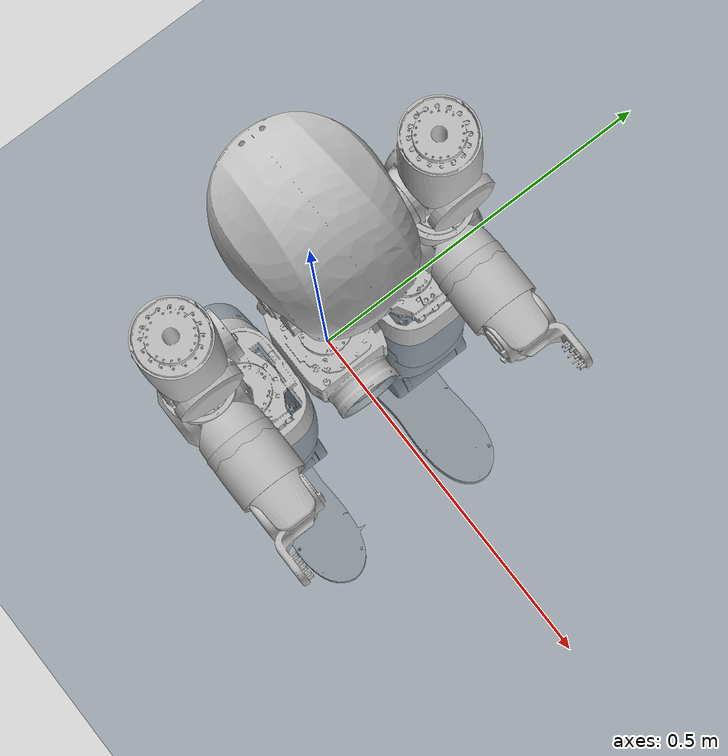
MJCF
<mujoco model="vr_m3_1">
  <include file="vr_m3_1_rl.xml"/>
  <include file="vr_m3_1_sensors.xml"/>
  <!-- Actuators are added from vr_m3_1_constants.py. -->
  <include file="scene.xml"/>
  <keyframe>
    <key name="home" qpos="0 0 0.854 1 0 0 0 0 0 0 0 0 0 0 0 0 0 0 0 0 0 0 0 0 0 0 0 0 0 0 0 0 0 0 0 0"/>
  </keyframe>
</mujoco>

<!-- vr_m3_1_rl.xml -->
<mujoco model="vr_m3_1">
  <compiler angle="radian" meshdir="assets"/>

  <default>
    <default class="vr_m3_1_visual">
      <geom contype="0" conaffinity="0" group="2" density="0"/>
    </default>
    <default class="vr_m3_1_collision">
      <geom group="3" rgba="0.9 0.9 0 1"/>
    </default>
  </default>

  <asset>
    <mesh name="pelvis" content_type="model/stl" file="pelvis.stl"/>
    <mesh name="right_hip_pitch_link" content_type="model/stl" file="right_hip_pitch_link.stl"/>
    <mesh name="right_hip_roll_link" content_type="model/stl" file="right_hip_roll_link.stl"/>
    <mesh name="right_hip_yaw_link" content_type="model/stl" file="right_hip_yaw_link.stl"/>
    <mesh name="right_knee_pitch_link" content_type="model/stl" file="right_knee_pitch_link.stl"/>
    <mesh name="right_ankle_pitch_link" content_type="model/stl" file="right_ankle_pitch_link.stl"/>
    <mesh name="right_ankle_roll_link" content_type="model/stl" file="right_ankle_roll_link.stl"/>
    <mesh name="left_hip_pitch_link" content_type="model/stl" file="left_hip_pitch_link.stl"/>
    <mesh name="left_hip_roll_link" content_type="model/stl" file="left_hip_roll_link.stl"/>
    <mesh name="left_hip_yaw_link" content_type="model/stl" file="left_hip_yaw_link.stl"/>
    <mesh name="left_knee_pitch_link" content_type="model/stl" file="left_knee_pitch_link.stl"/>
    <mesh name="left_ankle_pitch_link" content_type="model/stl" file="left_ankle_pitch_link.stl"/>
    <mesh name="left_ankle_roll_link" content_type="model/stl" file="left_ankle_roll_link.stl"/>
    <mesh name="waist_yaw_link" content_type="model/stl" file="waist_yaw_link.stl"/>
    <mesh name="right_shoulder_pitch_link" content_type="model/stl" file="right_shoulder_pitch_link.stl"/>
    <mesh name="right_shoulder_roll_link" content_type="model/stl" file="right_shoulder_roll_link.stl"/>
    <mesh name="right_shoulder_yaw_link" content_type="model/stl" file="right_shoulder_yaw_link.stl"/>
    <mesh name="right_elbow_pitch_link" content_type="model/stl" file="right_elbow_pitch_link.stl"/>
    <mesh name="right_wrist_yaw_link" content_type="model/stl" file="right_wrist_yaw_link.stl"/>
    <mesh name="right_wrist_roll_link" content_type="model/stl" file="right_wrist_roll_link.stl"/>
    <mesh name="right_wrist_pitch_link" content_type="model/stl" file="right_wrist_pitch_link.stl"/>
    <mesh name="left_shoulder_pitch_link" content_type="model/stl" file="left_shoulder_pitch_link.stl"/>
    <mesh name="left_shoulder_roll_link" content_type="model/stl" file="left_shoulder_roll_link.stl"/>
    <mesh name="left_shoulder_yaw_link" content_type="model/stl" file="left_shoulder_yaw_link.stl"/>
    <mesh name="left_elbow_pitch_link" content_type="model/stl" file="left_elbow_pitch_link.stl"/>
    <mesh name="left_wrist_yaw_link" content_type="model/stl" file="left_wrist_yaw_link.stl"/>
    <mesh name="left_wrist_roll_link" content_type="model/stl" file="left_wrist_roll_link.stl"/>
    <mesh name="left_wrist_pitch_link" content_type="model/stl" file="left_wrist_pitch_link.stl"/>
    <mesh name="head_yaw_link" content_type="model/stl" file="head_yaw_link.stl"/>
    <mesh name="head_pitch_link" content_type="model/stl" file="head_pitch_link.stl"/>
  </asset>

  <worldbody>
    <body name="pelvis">
      <inertial pos="0.000224 -0.000218 0.011034" quat="0.706820769 -0.017358994 -0.017145994 0.706971768" mass="6.43185" diaginertia="0.036025 0.0260816 0.0229004"/>
      <joint name="base_joint" type="free"/>
      <geom name="pelvis_visual_0" class="vr_m3_1_visual" quat="0.707106781 0 0 -0.707106781" type="mesh" rgba="0.752941 0.752941 0.752941 1" mesh="pelvis"/>
      <geom name="pelvis_collision_1" class="vr_m3_1_collision" size="0.088 0.026" pos="0 0 0.0373" quat="0 0.707106781 -0.707106781 0" type="capsule"/>
      <site name="imu" pos="0 0.00614 -0.02485" size="0.01"/>
      <body name="left_hip_pitch_link" pos="0 0.143944 -0.03857">
        <inertial pos="0.009731 -0.019644 -0.052452" quat="0.044931816 0.075202126 -0.97797234 0.189462066" mass="2.54318" diaginertia="0.00546777 0.00485599 0.00340124"/>
        <joint name="left_hip_pitch_joint" pos="0 0 0" axis="0 0.965929 -0.258808" limited="true" range="-2.617 2.617" actuatorfrclimited="true" actuatorfrcrange="-360 360"/>
        <geom name="left_hip_pitch_link_visual_0" class="vr_m3_1_visual" pos="0 0 0" quat="-0.430478098 0.560971128 -0.560971128 -0.430478098" type="mesh" rgba="0.752941 0.752941 0.752941 1" mesh="left_hip_pitch_link"/>
        <body name="left_hip_roll_link" pos="0 -0.0161056 -0.0601066">
          <inertial pos="0.003238 -0.0026 -0.039714" quat="-0.469569654 0.522145615 -0.578204574 0.415388694" mass="0.415313" diaginertia="0.00116178 0.000851104 0.000724118"/>
          <joint name="left_hip_roll_joint" pos="0 0 0" axis="1 0 0" limited="true" range="-0.785 2.094" actuatorfrclimited="true" actuatorfrcrange="-360 360"/>
          <geom name="left_hip_roll_link_visual_0" class="vr_m3_1_visual" quat="-0.5 0.5 -0.5 0.5" type="mesh" rgba="0.752941 0.752941 0.752941 1" mesh="left_hip_roll_link"/>
          <geom name="left_hip_roll_link_collision_1" class="vr_m3_1_collision" size="0.072 0.00114" pos="0.0037 0.0038 -0.019" quat="-0.707106781 0 0 0.707106781" type="capsule"/>
          <body name="left_hip_yaw_link" pos="0 0 -0.293399">
            <inertial pos="0.000887 0.002453 0.070811" quat="-0.680706964 0.004787 0.003675 0.732530961" mass="4.09062" diaginertia="0.033991 0.0338443 0.00407464"/>
            <joint name="left_hip_yaw_joint" pos="0 0 0" axis="0 0 1" limited="true" range="-2.617 2.617" actuatorfrclimited="true" actuatorfrcrange="-130 130"/>
            <geom name="left_hip_yaw_link_visual_0" class="vr_m3_1_visual" quat="0 0 0 1" type="mesh" rgba="0.752941 0.752941 0.752941 1" mesh="left_hip_yaw_link"/>
            <geom name="left_hip_yaw_link_collision_1" class="vr_m3_1_collision" size="0.053004 0.039571" pos="-0.0001 0.001 0.1079" quat="0 0 1 0" type="capsule"/>
            <body name="left_knee_pitch_link">
              <inertial pos="-0.005799 -0.000097 -0.198823" quat="0.011998998 0.870719862 0.491519922 0.010540998" mass="3.35573" diaginertia="0.0396614 0.0395063 0.00352228"/>
              <joint name="left_knee_pitch_joint" pos="0 0 0" axis="0 1 0" limited="true" range="-0.174 2.356" actuatorfrclimited="true" actuatorfrcrange="-360 360"/>
              <geom name="left_knee_pitch_link_visual_0" class="vr_m3_1_visual" pos="0 0 0" quat="0.5 -0.5 0.5 0.5" type="mesh" rgba="0.752941 0.752941 0.752941 1" mesh="left_knee_pitch_link"/>
              <geom name="left_knee_pitch_link_collision_1" class="vr_m3_1_collision" size="0.06053 0.089494" pos="-0.0114 0.0005 -0.265" quat="0.707106781 0 0 0.707106781" type="capsule"/>
              <geom name="left_knee_pitch_link_collision_2" class="vr_m3_1_collision" size="0.055 0.03 0.052" pos="0.038 0 -0.045" quat="0.5 -0.5 0.5 0.5" type="box"/>
              <body name="left_ankle_pitch_link" pos="0 0 -0.411">
                <inertial pos="0 0 -0.000068" quat="0.5 -0.5 0.5 0.5" mass="0.097508" diaginertia="0.000019 0.000015 0.000012"/>
                <joint name="left_ankle_pitch_joint" pos="0 0 0" axis="0 1 0" limited="true" range="-0.873 0.523" actuatorfrclimited="true" actuatorfrcrange="-120 120"/>
                <geom name="left_ankle_pitch_link_visual_0" class="vr_m3_1_visual" quat="0.5 -0.5 0.5 0.5" type="mesh" rgba="0.647059 0.619608 0.588235 1" mesh="left_ankle_pitch_link"/>
                <body name="left_ankle_roll_link">
                  <inertial pos="-0.002511 -0.000018 -0.027456" quat="0.493858244 0.495631244 0.438220216 0.564284278" mass="0.800167" diaginertia="0.00287425 0.00286248 0.000501262"/>
                  <joint name="left_ankle_roll_joint" pos="0 0 0" axis="1 0 0" limited="true" range="-0.262 0.262" actuatorfrclimited="true" actuatorfrcrange="-120 120"/>
                  <geom name="left_ankle_roll_link_visual_0" class="vr_m3_1_visual" quat="0.707106781 0 0.707106781 0" type="mesh" rgba="0.752941 0.752941 0.752941 1" mesh="left_ankle_roll_link"/>
                  <geom name="left_ankle_roll_link_collision_1" class="vr_m3_1_collision" size="0.005 0.02" pos="0.07 0.045 -0.0463" quat="0.707106781 0 0.707106781 0" type="capsule"/>
                  <geom name="left_ankle_roll_link_collision_2" class="vr_m3_1_collision" size="0.005 0.1" pos="0.02 0.035 -0.0463" quat="0.707106781 0 0.707106781 0" type="capsule"/>
                  <geom name="left_ankle_roll_link_collision_3" class="vr_m3_1_collision" size="0.005 0.113" pos="0.02 0.025 -0.0463" quat="0.707106781 0 0.707106781 0" type="capsule"/>
                  <geom name="left_ankle_roll_link_collision_4" class="vr_m3_1_collision" size="0.005 0.121" pos="0.021 0.015 -0.0463" quat="0.707106781 0 0.707106781 0" type="capsule"/>
                  <geom name="left_ankle_roll_link_collision_5" class="vr_m3_1_collision" size="0.005 0.127" pos="0.021 0.005 -0.0463" quat="0.707106781 0 0.707106781 0" type="capsule"/>
                  <geom name="left_ankle_roll_link_collision_6" class="vr_m3_1_collision" size="0.005 0.127" pos="0.021 -0.005 -0.0463" quat="0.707106781 0 0.707106781 0" type="capsule"/>
                  <geom name="left_ankle_roll_link_collision_7" class="vr_m3_1_collision" size="0.005 0.125" pos="0.021 -0.015 -0.0463" quat="0.707106781 0 0.707106781 0" type="capsule"/>
                  <geom name="left_ankle_roll_link_collision_8" class="vr_m3_1_collision" size="0.005 0.118" pos="0.021 -0.025 -0.0463" quat="0.707106781 0 0.707106781 0" type="capsule"/>
                  <geom name="left_ankle_roll_link_collision_9" class="vr_m3_1_collision" size="0.005 0.1" pos="0.019 -0.035 -0.0463" quat="0.707106781 0 0.707106781 0" type="capsule"/>
                  <geom name="left_ankle_roll_link_collision_10" class="vr_m3_1_collision" size="0.005 0.03" pos="0.07 -0.045 -0.0463" quat="0.707106781 0 0.707106781 0" type="capsule"/>
                  <site name="left_foot" pos="0.045 0 -0.0463" size="0.01"/>
                </body>
              </body>
            </body>
          </body>
        </body>
      </body>
      <body name="right_hip_pitch_link" pos="0 -0.143944 -0.03857">
        <inertial pos="0.009731 0.019644 -0.052452" quat="0.044931816 -0.075202126 -0.97797234 -0.189462066" mass="2.54318" diaginertia="0.00546777 0.00485599 0.00340124"/>
        <joint name="right_hip_pitch_joint" pos="0 0 0" axis="0 0.965929 0.258808" limited="true" range="-2.617 2.617" actuatorfrclimited="true" actuatorfrcrange="-360 360"/>
        <geom name="right_hip_pitch_link_visual_0" class="vr_m3_1_visual" pos="0 0 0" quat="-0.560971128 0.430478098 -0.430478098 -0.560971128" type="mesh" rgba="0.752941 0.752941 0.752941 1" mesh="right_hip_pitch_link"/>
        <body name="right_hip_roll_link" pos="0 0.0161056 -0.0601066">
          <inertial pos="0.003238 0.0026 -0.039714" quat="0.415388694 -0.578204574 0.522145615 -0.469569654" mass="0.415313" diaginertia="0.00116178 0.000851104 0.000724118"/>
          <joint name="right_hip_roll_joint" pos="0 0 0" axis="1 0 0" limited="true" range="-2.094 0.785" actuatorfrclimited="true" actuatorfrcrange="-360 360"/>
          <geom name="right_hip_roll_link_visual_0" class="vr_m3_1_visual" quat="0.5 -0.5 0.5 -0.5" type="mesh" rgba="0.752941 0.752941 0.752941 1" mesh="right_hip_roll_link"/>
          <geom name="right_hip_roll_link_collision_1" class="vr_m3_1_collision" size="0.072 0.00114" pos="0.0037 -0.0038 -0.019" quat="0.707106781 0 0 -0.707106781" type="capsule"/>
          <body name="right_hip_yaw_link" pos="0 0 -0.293399">
            <inertial pos="0.000887 -0.002453 0.070811" quat="0.732530961 0.003675 0.004787 -0.680706964" mass="4.09062" diaginertia="0.033991 0.0338443 0.00407464"/>
            <joint name="right_hip_yaw_joint" pos="0 0 0" axis="0 0 1" limited="true" range="-2.617 2.617" actuatorfrclimited="true" actuatorfrcrange="-130 130"/>
            <geom name="right_hip_yaw_link_visual_0" class="vr_m3_1_visual" quat="0 0 0 -1" type="mesh" rgba="0.752941 0.752941 0.752941 1" mesh="right_hip_yaw_link"/>
            <geom name="right_hip_yaw_link_collision_1" class="vr_m3_1_collision" size="0.053004 0.039571" pos="-0.0001 0.001 0.1079" quat="0 0 -1 0" type="capsule"/>
            <body name="right_knee_pitch_link">
              <inertial pos="-0.005799 0.000097 -0.198823" quat="-0.010540998 -0.491519922 -0.870719862 -0.011998998" mass="3.35573" diaginertia="0.0396614 0.0395063 0.00352228"/>
              <joint name="right_knee_pitch_joint" pos="0 0 0" axis="0 1 0" limited="true" range="-0.174 2.356" actuatorfrclimited="true" actuatorfrcrange="-360 360"/>
              <geom name="right_knee_pitch_link_visual_0" class="vr_m3_1_visual" pos="0 0 0" quat="-0.5 0.5 -0.5 -0.5" type="mesh" rgba="0.752941 0.752941 0.752941 1" mesh="right_knee_pitch_link"/>
              <geom name="right_knee_pitch_link_collision_1" class="vr_m3_1_collision" size="0.06053 0.089494" pos="-0.0114 0.0005 -0.265" quat="-0.707106781 0 0 -0.707106781" type="capsule"/>
              <geom name="right_knee_pitch_link_collision_2" class="vr_m3_1_collision" size="0.055 0.03 0.052" pos="0.038 0 -0.045" quat="-0.5 0.5 -0.5 -0.5" type="box"/>
              <body name="right_ankle_pitch_link" pos="0 0 -0.411">
                <inertial pos="0 0 -0.000068" quat="-0.5 0.5 -0.5 -0.5" mass="0.097508" diaginertia="0.000019 0.000015 0.000012"/>
                <joint name="right_ankle_pitch_joint" pos="0 0 0" axis="0 1 0" limited="true" range="-0.873 0.523" actuatorfrclimited="true" actuatorfrcrange="-120 120"/>
                <geom name="right_ankle_pitch_link_visual_0" class="vr_m3_1_visual" quat="-0.5 0.5 -0.5 -0.5" type="mesh" rgba="0.647059 0.619608 0.588235 1" mesh="right_ankle_pitch_link"/>
                <body name="right_ankle_roll_link">
                  <inertial pos="-0.002511 0.000018 -0.027456" quat="-0.564284278 -0.438220216 -0.495631244 -0.493858244" mass="0.800167" diaginertia="0.00287425 0.00286248 0.000501262"/>
                  <joint name="right_ankle_roll_joint" pos="0 0 0" axis="1 0 0" limited="true" range="-0.262 0.262" actuatorfrclimited="true" actuatorfrcrange="-120 120"/>
                  <geom name="right_ankle_roll_link_visual_0" class="vr_m3_1_visual" quat="-0.707106781 0 -0.707106781 0" type="mesh" rgba="0.752941 0.752941 0.752941 1" mesh="right_ankle_roll_link"/>
                  <geom name="right_ankle_roll_link_collision_1" class="vr_m3_1_collision" size="0.005 0.02" pos="0.07 -0.045 -0.0463" quat="-0.707106781 0 -0.707106781 0" type="capsule"/>
                  <geom name="right_ankle_roll_link_collision_2" class="vr_m3_1_collision" size="0.005 0.1" pos="0.02 -0.035 -0.0463" quat="-0.707106781 0 -0.707106781 0" type="capsule"/>
                  <geom name="right_ankle_roll_link_collision_3" class="vr_m3_1_collision" size="0.005 0.113" pos="0.02 -0.025 -0.0463" quat="-0.707106781 0 -0.707106781 0" type="capsule"/>
                  <geom name="right_ankle_roll_link_collision_4" class="vr_m3_1_collision" size="0.005 0.121" pos="0.021 -0.015 -0.0463" quat="-0.707106781 0 -0.707106781 0" type="capsule"/>
                  <geom name="right_ankle_roll_link_collision_5" class="vr_m3_1_collision" size="0.005 0.127" pos="0.021 -0.005 -0.0463" quat="-0.707106781 0 -0.707106781 0" type="capsule"/>
                  <geom name="right_ankle_roll_link_collision_6" class="vr_m3_1_collision" size="0.005 0.127" pos="0.021 0.005 -0.0463" quat="-0.707106781 0 -0.707106781 0" type="capsule"/>
                  <geom name="right_ankle_roll_link_collision_7" class="vr_m3_1_collision" size="0.005 0.125" pos="0.021 0.015 -0.0463" quat="-0.707106781 0 -0.707106781 0" type="capsule"/>
                  <geom name="right_ankle_roll_link_collision_8" class="vr_m3_1_collision" size="0.005 0.118" pos="0.021 0.025 -0.0463" quat="-0.707106781 0 -0.707106781 0" type="capsule"/>
                  <geom name="right_ankle_roll_link_collision_9" class="vr_m3_1_collision" size="0.005 0.1" pos="0.019 0.035 -0.0463" quat="-0.707106781 0 -0.707106781 0" type="capsule"/>
                  <geom name="right_ankle_roll_link_collision_10" class="vr_m3_1_collision" size="0.005 0.03" pos="0.07 0.045 -0.0463" quat="-0.707106781 0 -0.707106781 0" type="capsule"/>
                  <site name="right_foot" pos="0.045 0 -0.0463" size="0.01"/>
                </body>
              </body>
            </body>
          </body>
        </body>
      </body>
      <body name="waist_yaw_link" pos="0 0 0.420134">
        <inertial pos="-0.014262 -0.00057 -0.111953" quat="-0.004481998 -0.047050984 -0.013465995 0.998791662" mass="16.9444" diaginertia="0.291317 0.227092 0.15517"/>
        <joint name="waist_yaw_joint" pos="0 0 0" axis="0 0 1" limited="true" range="-3.14 3.14" actuatorfrclimited="true" actuatorfrcrange="-102 102"/>
        <geom name="waist_yaw_link_visual_0" class="vr_m3_1_visual" quat="0 0 0 1" type="mesh" rgba="0.752941 0.752941 0.752941 1" mesh="waist_yaw_link"/>
        <geom name="waist_yaw_link_collision_1" class="vr_m3_1_collision" size="0.119734 0.057854" pos="0 0 -0.0791" quat="0 0 0 1" type="capsule"/>
        <body name="left_shoulder_pitch_link" pos="0 0.174999 0">
          <inertial pos="-0.003686 -0.002234 0.000048" quat="0.666083375 -0.262223148 0.654044368 0.244536138" mass="1.69784" diaginertia="0.00144111 0.00132242 0.00131247"/>
          <joint name="left_shoulder_pitch_joint" pos="0 0 0" axis="0 1 0" limited="true" range="-3.14 1.57" actuatorfrclimited="true" actuatorfrcrange="-66 66"/>
          <geom name="left_shoulder_pitch_link_visual_0" class="vr_m3_1_visual" quat="0.5 -0.5 0.5 0.5" type="mesh" rgba="0.752941 0.752941 0.752941 1" mesh="left_shoulder_pitch_link"/>
          <body name="left_shoulder_roll_link">
            <inertial pos="-0.001956 0.000016 -0.094554" quat="0.704270246 -0.05804252 0.05721452 -0.705238247" mass="0.711117" diaginertia="0.001434 0.00132273 0.000499266"/>
            <joint name="left_shoulder_roll_joint" pos="0 0 0" axis="1 0 0" limited="true" range="0 2.356" actuatorfrclimited="true" actuatorfrcrange="-66 66"/>
            <geom name="left_shoulder_roll_link_visual_0" class="vr_m3_1_visual" quat="0.5 -0.5 0.5 -0.5" type="mesh" rgba="0.752941 0.752941 0.752941 1" mesh="left_shoulder_roll_link"/>
            <geom name="left_shoulder_roll_link_collision_1" class="vr_m3_1_collision" size="0.047 0.041674" pos="-0.0025 0 -0.044" quat="0.707106781 0 0 -0.707106781" type="capsule"/>
            <body name="left_shoulder_yaw_link" pos="0 0 -0.23">
              <inertial pos="-0.00202 0.010279 0.054483" quat="0.683549737 -0.146675943 -0.170735934 -0.694330732" mass="0.178642" diaginertia="0.000240218 0.000238132 0.0000876502"/>
              <joint name="left_shoulder_yaw_joint" pos="0 0 0" axis="0 0 1" limited="true" range="-2.79 2.79" actuatorfrclimited="true" actuatorfrcrange="-34 34"/>
              <geom name="left_shoulder_yaw_link_visual_0" class="vr_m3_1_visual" quat="0 0 0 -1" type="mesh" rgba="0.752941 0.752941 0.752941 1" mesh="left_shoulder_yaw_link"/>
              <geom name="left_shoulder_yaw_link_collision_1" class="vr_m3_1_collision" size="0.0333 0.00815" pos="-0.01 0 0.064" quat="0 0 -0.707106781 -0.707106781" type="capsule"/>
              <body name="left_elbow_pitch_link">
                <inertial pos="0.005432 -0.000905 0.000096" quat="0.712543592 -0.051436971 -0.6993976 -0.021882987" mass="0.623076" diaginertia="0.000470082 0.000441891 0.000355027"/>
                <joint name="left_elbow_pitch_joint" pos="0 0 0" axis="0 1 0" limited="true" range="-0.524 1.571" actuatorfrclimited="true" actuatorfrcrange="-34 34"/>
                <geom name="left_elbow_pitch_link_visual_0" class="vr_m3_1_visual" quat="0.5 -0.5 -0.5 -0.5" type="mesh" rgba="0.752941 0.752941 0.752941 1" mesh="left_elbow_pitch_link"/>
                <geom name="left_elbow_pitch_link_collision_1" class="vr_m3_1_collision" size="0.030637 0.010363" pos="0.01 -0.0084 -0.0152" quat="0.708802693 0.001700009 -0.705402695 -0.001700009" type="capsule"/>
                <body name="left_wrist_yaw_link" pos="0.172 0 0">
                  <inertial pos="-0.078084 -0.000027 0.003505" quat="0.565479919 -0.424537939 -0.424537939 0.565479919" mass="0.617133" diaginertia="0.000783 0.000720652 0.000224348"/>
                  <joint name="left_wrist_yaw_joint" pos="0 0 0" axis="-1 0 0" limited="true" range="-2.79 2.79" actuatorfrclimited="true" actuatorfrcrange="-11 11"/>
                  <geom name="left_wrist_yaw_link_visual_0" class="vr_m3_1_visual" quat="0.5 -0.5 -0.5 0.5" type="mesh" rgba="0.752941 0.752941 0.752941 1" mesh="left_wrist_yaw_link"/>
                  <geom name="left_wrist_yaw_link_collision_1" class="vr_m3_1_collision" size="0.036526 0.038452" pos="-0.0487 -0.0001 0.0018" quat="0.5 0.5 0.5 0.5" type="capsule"/>
                  <body name="left_wrist_roll_link">
                    <inertial pos="0.006191 0.007362 0.00506" quat="-0.027734003 0.541649055 -0.449548045 0.709756072" mass="0.568929" diaginertia="0.000374851 0.000323713 0.000137436"/>
                    <joint name="left_wrist_roll_joint" pos="0 0 0" axis="0 0 1" limited="true" range="-1.571 1.571" actuatorfrclimited="true" actuatorfrcrange="-11 11"/>
                    <geom name="left_wrist_roll_link_visual_0" class="vr_m3_1_visual" type="mesh" rgba="0.752941 0.752941 0.752941 1" mesh="left_wrist_roll_link"/>
                    <geom name="left_wrist_roll_link_collision_1" class="vr_m3_1_collision" size="0.028375 0.014756" pos="0.065 0.0001 -0.0002" quat="0.707106654 -0.707106654 -0.000600006 0" type="capsule"/>
                    <body name="left_wrist_pitch_link" pos="0.058 0 0">
                      <inertial pos="0.001735 0.008087 0.000151" quat="0.693519866 -0.137949973 0.693519866 0.137949973" mass="0.488406" diaginertia="0.000123 0.000120485 0.000103515"/>
                      <joint name="left_wrist_pitch_joint" pos="0 0 0" axis="0 1 0" limited="true" range="-1.571 1.571" actuatorfrclimited="true" actuatorfrcrange="-11 11"/>
                      <geom name="left_wrist_pitch_link_visual_0" class="vr_m3_1_visual" quat="0.707106781 -0.707106781 0 0" type="mesh" rgba="0.752941 0.752941 0.752941 1" mesh="left_wrist_pitch_link"/>
                    </body>
                  </body>
                </body>
              </body>
            </body>
          </body>
        </body>
        <body name="right_shoulder_pitch_link" pos="0 -0.175001 0">
          <inertial pos="-0.003686 0.002234 0.000048" quat="0.666083375 0.262223148 0.654044368 -0.244536138" mass="1.69784" diaginertia="0.00144111 0.00132242 0.00131247"/>
          <joint name="right_shoulder_pitch_joint" pos="0 0 0" axis="0 1 0" limited="true" range="-3.14 1.57" actuatorfrclimited="true" actuatorfrcrange="-66 66"/>
          <geom name="right_shoulder_pitch_link_visual_0" class="vr_m3_1_visual" quat="0.5 -0.5 0.5 0.5" type="mesh" rgba="0.752941 0.752941 0.752941 1" mesh="right_shoulder_pitch_link"/>
          <body name="right_shoulder_roll_link">
            <inertial pos="-0.001956 -0.000016 -0.094554" quat="0.705238247 -0.05721452 0.05804252 -0.704270246" mass="0.711117" diaginertia="0.001434 0.00132273 0.000499266"/>
            <joint name="right_shoulder_roll_joint" pos="0 0 0" axis="1 0 0" limited="true" range="-2.356 0" actuatorfrclimited="true" actuatorfrcrange="-66 66"/>
            <geom name="right_shoulder_roll_link_visual_0" class="vr_m3_1_visual" quat="0.5 -0.5 0.5 -0.5" type="mesh" rgba="0.752941 0.752941 0.752941 1" mesh="right_shoulder_roll_link"/>
            <geom name="right_shoulder_roll_link_collision_1" class="vr_m3_1_collision" size="0.047 0.041674" pos="-0.0025 0 -0.044" quat="0.707106781 0 0 -0.707106781" type="capsule"/>
            <body name="right_shoulder_yaw_link" pos="0 0 -0.23">
              <inertial pos="-0.00202 -0.010279 0.054483" quat="0.694330732 0.170735934 0.146675943 -0.683549737" mass="0.178642" diaginertia="0.000240218 0.000238132 0.0000876502"/>
              <joint name="right_shoulder_yaw_joint" pos="0 0 0" axis="0 0 1" limited="true" range="-2.79 2.79" actuatorfrclimited="true" actuatorfrcrange="-34 34"/>
              <geom name="right_shoulder_yaw_link_visual_0" class="vr_m3_1_visual" quat="0 0 0 -1" type="mesh" rgba="0.752941 0.752941 0.752941 1" mesh="right_shoulder_yaw_link"/>
              <geom name="right_shoulder_yaw_link_collision_1" class="vr_m3_1_collision" size="0.0333 0.00815" pos="-0.01 0 0.064" quat="0 0 -0.707106781 -0.707106781" type="capsule"/>
              <body name="right_elbow_pitch_link">
                <inertial pos="0.005432 0.000905 0.000096" quat="0.712543592 0.051436971 -0.6993976 0.021882987" mass="0.623076" diaginertia="0.000470082 0.000441891 0.000355027"/>
                <joint name="right_elbow_pitch_joint" pos="0 0 0" axis="0 1 0" limited="true" range="-0.524 1.571" actuatorfrclimited="true" actuatorfrcrange="-34 34"/>
                <geom name="right_elbow_pitch_link_visual_0" class="vr_m3_1_visual" quat="0.5 -0.5 -0.5 -0.5" type="mesh" rgba="0.752941 0.752941 0.752941 1" mesh="right_elbow_pitch_link"/>
                <geom name="right_elbow_pitch_link_collision_1" class="vr_m3_1_collision" size="0.030637 0.010363" pos="0.01 -0.0084 -0.0152" quat="0.708802693 0.001700009 -0.705402695 -0.001700009" type="capsule"/>
                <body name="right_wrist_yaw_link" pos="0.172 0 0">
                  <inertial pos="-0.078084 0.000027 0.003505" quat="0.565479919 -0.424537939 -0.424537939 0.565479919" mass="0.617133" diaginertia="0.000783 0.000720652 0.000224348"/>
                  <joint name="right_wrist_yaw_joint" pos="0 0 0" axis="-1 0 0" limited="true" range="-2.79 2.79" actuatorfrclimited="true" actuatorfrcrange="-11 11"/>
                  <geom name="right_wrist_yaw_link_visual_0" class="vr_m3_1_visual" quat="0.5 -0.5 -0.5 0.5" type="mesh" rgba="0.752941 0.752941 0.752941 1" mesh="right_wrist_yaw_link"/>
                  <geom name="right_wrist_yaw_link_collision_1" class="vr_m3_1_collision" size="0.036526 0.038452" pos="-0.0487 -0.0001 0.0018" quat="0.5 0.5 0.5 0.5" type="capsule"/>
                  <body name="right_wrist_roll_link">
                    <inertial pos="0.006191 -0.007362 0.00506" quat="0.027734003 0.541649055 0.449548045 0.709756072" mass="0.568929" diaginertia="0.000374851 0.000323713 0.000137436"/>
                    <joint name="right_wrist_roll_joint" pos="0 0 0" axis="0 0 1" limited="true" range="-1.571 1.571" actuatorfrclimited="true" actuatorfrcrange="-11 11"/>
                    <geom name="right_wrist_roll_link_visual_0" class="vr_m3_1_visual" type="mesh" rgba="0.752941 0.752941 0.752941 1" mesh="right_wrist_roll_link"/>
                    <geom name="right_wrist_roll_link_collision_1" class="vr_m3_1_collision" size="0.028375 0.014756" pos="0.065 0.0001 -0.0002" quat="0.707106654 -0.707106654 -0.000600006 0" type="capsule"/>
                    <body name="right_wrist_pitch_link" pos="0.058 0 0">
                      <inertial pos="0.001735 -0.008087 0.000151" quat="0.693519866 0.137949973 0.693519866 -0.137949973" mass="0.488406" diaginertia="0.000123 0.000120485 0.000103515"/>
                      <joint name="right_wrist_pitch_joint" pos="0 0 0" axis="0 1 0" limited="true" range="-1.571 1.571" actuatorfrclimited="true" actuatorfrcrange="-11 11"/>
                      <geom name="right_wrist_pitch_link_visual_0" class="vr_m3_1_visual" quat="0.707106781 -0.707106781 0 0" type="mesh" rgba="0.752941 0.752941 0.752941 1" mesh="right_wrist_pitch_link"/>
                    </body>
                  </body>
                </body>
              </body>
            </body>
          </body>
        </body>
        <body name="head_yaw_link" pos="0 -0.000001 0.218181">
          <inertial pos="-0.000376 0.00322 -0.060039" quat="-0.056880998 -0.007543 -0.078404997 0.995268964" mass="1.08127" diaginertia="0.00201431 0.00199457 0.000743125"/>
          <joint name="head_yaw_joint" pos="0 0 0" axis="0 0 1" limited="true" range="-0.01 0.01" actuatorfrclimited="true" actuatorfrcrange="-11 11"/>
          <geom name="head_yaw_link_visual_0" class="vr_m3_1_visual" quat="0 0 0 1" type="mesh" rgba="0.752941 0.752941 0.752941 1" mesh="head_yaw_link"/>
          <body name="head_pitch_link">
            <inertial pos="0.050533 -0.000653 0.00896" quat="-0.552588958 0.446930966 0.468171965 -0.525083961" mass="0.502756" diaginertia="0.00149931 0.00137191 0.00105978"/>
            <joint name="head_pitch_joint" pos="0 0 0" axis="0 1 0" limited="true" range="-0.01 0.01" actuatorfrclimited="true" actuatorfrcrange="-4.8 4.8"/>
            <geom name="head_pitch_link_visual_0" class="vr_m3_1_visual" pos="0 0 0" quat="0 0 0.707106781 0.707106781" type="mesh" rgba="0.752941 0.752941 0.752941 1" mesh="head_pitch_link"/>
            <geom name="head_pitch_link_collision_1" class="vr_m3_1_collision" size="0.10661 0.00366" pos="0.0174 0 0" quat="-0.707106781 0 0 -0.707106781" type="capsule"/>
          </body>
        </body>
      </body>
    </body>
  </worldbody>
</mujoco>

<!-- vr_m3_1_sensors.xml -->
<mujoco>
  <sensor>
    <jointpos name="left_hip_pitch_pos" joint="left_hip_pitch_joint" />
    <jointpos name="left_hip_roll_pos" joint="left_hip_roll_joint" />
    <jointpos name="left_hip_yaw_pos" joint="left_hip_yaw_joint" />
    <jointpos name="left_knee_pos" joint="left_knee_pitch_joint" />
    <jointpos name="left_ankle_pitch_pos" joint="left_ankle_pitch_joint" />
    <jointpos name="left_ankle_roll_pos" joint="left_ankle_roll_joint" />

    <jointpos name="right_hip_pitch_pos" joint="right_hip_pitch_joint" />
    <jointpos name="right_hip_roll_pos" joint="right_hip_roll_joint" />
    <jointpos name="right_hip_yaw_pos" joint="right_hip_yaw_joint" />
    <jointpos name="right_knee_pitch_pos" joint="right_knee_pitch_joint" />
    <jointpos name="right_ankle_pitch_pos" joint="right_ankle_pitch_joint" />
    <jointpos name="right_ankle_roll_pos" joint="right_ankle_roll_joint" />

    <jointpos name="waist_yaw_pos" joint="waist_yaw_joint" />

    <jointpos name="left_shoulder_pitch_pos" joint="left_shoulder_pitch_joint" />
    <jointpos name="left_shoulder_roll_pos" joint="left_shoulder_roll_joint" />
    <jointpos name="left_shoulder_yaw_pos" joint="left_shoulder_yaw_joint" />
    <jointpos name="left_elbow_pitch_pos" joint="left_elbow_pitch_joint" />
    <jointpos name="left_wrist_yaw_pos" joint="left_wrist_yaw_joint" />
    <jointpos name="left_wrist_roll_pos" joint="left_wrist_roll_joint" />
    <jointpos name="left_wrist_pitch_pos" joint="left_wrist_pitch_joint" />

    <jointpos name="right_shoulder_pitch_pos" joint="right_shoulder_pitch_joint" />
    <jointpos name="right_shoulder_roll_pos" joint="right_shoulder_roll_joint" />
    <jointpos name="right_shoulder_yaw_pos" joint="right_shoulder_yaw_joint" />
    <jointpos name="right_elbow_pitch_pos" joint="right_elbow_pitch_joint" />
    <jointpos name="right_wrist_yaw_pos" joint="right_wrist_yaw_joint" />
    <jointpos name="right_wrist_roll_pos" joint="right_wrist_roll_joint" />
    <jointpos name="right_wrist_pitch_pos" joint="right_wrist_pitch_joint" />

    <jointvel name="left_hip_pitch_vel" joint="left_hip_pitch_joint" />
    <jointvel name="left_hip_roll_vel" joint="left_hip_roll_joint" />
    <jointvel name="left_hip_yaw_vel" joint="left_hip_yaw_joint" />
    <jointvel name="left_knee_pitch_vel" joint="left_knee_pitch_joint" />
    <jointvel name="left_ankle_pitch_vel" joint="left_ankle_pitch_joint" />
    <jointvel name="left_ankle_roll_vel" joint="left_ankle_roll_joint" />

    <jointvel name="right_hip_pitch_vel" joint="right_hip_pitch_joint" />
    <jointvel name="right_hip_roll_vel" joint="right_hip_roll_joint" />
    <jointvel name="right_hip_yaw_vel" joint="right_hip_yaw_joint" />
    <jointvel name="right_knee_pitch_vel" joint="right_knee_pitch_joint" />
    <jointvel name="right_ankle_pitch_vel" joint="right_ankle_pitch_joint" />
    <jointvel name="right_ankle_roll_vel" joint="right_ankle_roll_joint" />

    <jointvel name="waist_yaw_vel" joint="waist_yaw_joint" />

    <jointvel name="left_shoulder_pitch_vel" joint="left_shoulder_pitch_joint" />
    <jointvel name="left_shoulder_roll_vel" joint="left_shoulder_roll_joint" />
    <jointvel name="left_shoulder_yaw_vel" joint="left_shoulder_yaw_joint" />
    <jointvel name="left_elbow_pitch_vel" joint="left_elbow_pitch_joint" />
    <jointvel name="left_wrist_yaw_vel" joint="left_wrist_yaw_joint" />
    <jointvel name="left_wrist_roll_vel" joint="left_wrist_roll_joint" />
    <jointvel name="left_wrist_pitch_vel" joint="left_wrist_pitch_joint" />

    <jointvel name="right_shoulder_pitch_vel" joint="right_shoulder_pitch_joint" />
    <jointvel name="right_shoulder_roll_vel" joint="right_shoulder_roll_joint" />
    <jointvel name="right_shoulder_yaw_vel" joint="right_shoulder_yaw_joint" />
    <jointvel name="right_elbow_pitch_vel" joint="right_elbow_pitch_joint" />
    <jointvel name="right_wrist_yaw_vel" joint="right_wrist_yaw_joint" />
    <jointvel name="right_wrist_roll_vel" joint="right_wrist_roll_joint" />
    <jointvel name="right_wrist_pitch_vel" joint="right_wrist_pitch_joint" />

    <jointactuatorfrc name="left_hip_pitch_torque" joint="left_hip_pitch_joint" />
    <jointactuatorfrc name="left_hip_roll_torque" joint="left_hip_roll_joint" />
    <jointactuatorfrc name="left_hip_yaw_torque" joint="left_hip_yaw_joint" />
    <jointactuatorfrc name="left_knee_pitch_torque" joint="left_knee_pitch_joint" />
    <jointactuatorfrc name="left_ankle_pitch_torque" joint="left_ankle_pitch_joint" />
    <jointactuatorfrc name="left_ankle_roll_torque" joint="left_ankle_roll_joint" />

    <jointactuatorfrc name="right_hip_pitch_torque" joint="right_hip_pitch_joint" />
    <jointactuatorfrc name="right_hip_roll_torque" joint="right_hip_roll_joint" />
    <jointactuatorfrc name="right_hip_yaw_torque" joint="right_hip_yaw_joint" />
    <jointactuatorfrc name="right_knee_pitch_torque" joint="right_knee_pitch_joint" />
    <jointactuatorfrc name="right_ankle_pitch_torque" joint="right_ankle_pitch_joint" />
    <jointactuatorfrc name="right_ankle_roll_torque" joint="right_ankle_roll_joint" />

    <jointactuatorfrc name="waist_yaw_torque" joint="waist_yaw_joint" />

    <jointactuatorfrc name="left_shoulder_pitch_torque" joint="left_shoulder_pitch_joint" />
    <jointactuatorfrc name="left_shoulder_roll_torque" joint="left_shoulder_roll_joint" />
    <jointactuatorfrc name="left_shoulder_yaw_torque" joint="left_shoulder_yaw_joint" />
    <jointactuatorfrc name="left_elbow_pitch_torque" joint="left_elbow_pitch_joint" />
    <jointactuatorfrc name="left_wrist_yaw_torque" joint="left_wrist_yaw_joint" />
    <jointactuatorfrc name="left_wrist_roll_torque" joint="left_wrist_roll_joint" />
    <jointactuatorfrc name="left_wrist_pitch_torque" joint="left_wrist_pitch_joint" />

    <jointactuatorfrc name="right_shoulder_pitch_torque" joint="right_shoulder_pitch_joint" />
    <jointactuatorfrc name="right_shoulder_roll_torque" joint="right_shoulder_roll_joint" />
    <jointactuatorfrc name="right_shoulder_yaw_torque" joint="right_shoulder_yaw_joint" />
    <jointactuatorfrc name="right_elbow_pitch_torque" joint="right_elbow_pitch_joint" />
    <jointactuatorfrc name="right_wrist_yaw_torque" joint="right_wrist_yaw_joint" />
    <jointactuatorfrc name="right_wrist_roll_torque" joint="right_wrist_roll_joint" />
    <jointactuatorfrc name="right_wrist_pitch_torque" joint="right_wrist_pitch_joint" />

    <!-- IMU sensors -->
    <gyro name="imu_ang_vel" site="imu" />
    <velocimeter name="imu_lin_vel" site="imu" />
    <accelerometer name="imu_lin_acc" site="imu" />
    <subtreeangmom name="root_angmom" body="pelvis" />
  </sensor>
</mujoco>

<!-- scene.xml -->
<mujoco>
	<visual>
		<headlight diffuse="0.6 0.6 0.6" ambient="0.3 0.3 0.3" specular="0 0 0" />
		<rgba haze="0.15 0.25 0.35 1" />
		<global azimuth="-130" elevation="-20" />
	</visual>

	<asset>
		<texture type="skybox" builtin="gradient" rgb1="0.3 0.5 0.7" rgb2="0 0 0" width="512"
			height="3072" />
		<texture type="2d" name="groundplane" builtin="checker" mark="edge" rgb1="0.2 0.3 0.4"
			rgb2="0.1 0.2 0.3"
			markrgb="0.8 0.8 0.8" width="300" height="300" />
		<material name="groundplane" texture="groundplane" texuniform="true" texrepeat="5 5"
			reflectance="0.2" />
	</asset>

	<worldbody>
		<light pos="0 0 1.5" dir="0 0 -1" directional="true" />
		<geom name="floor" size="0 0 0.05" type="plane" material="groundplane" />
	</worldbody>
</mujoco>
